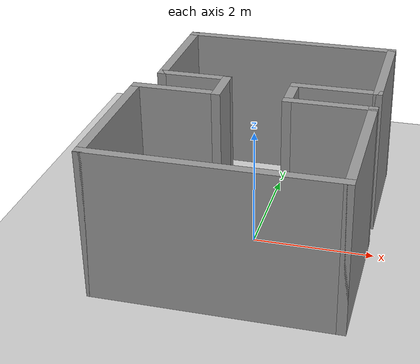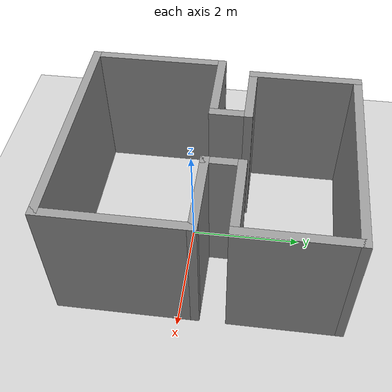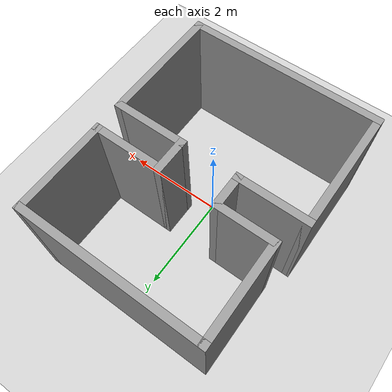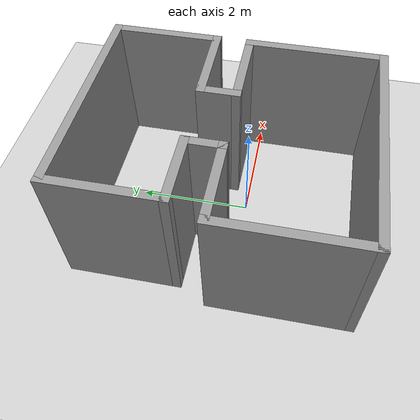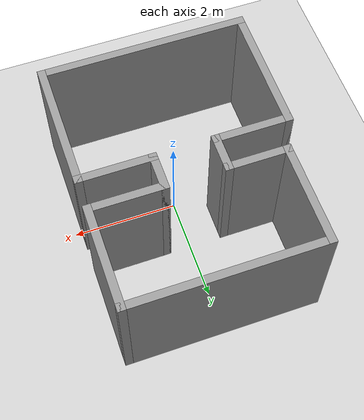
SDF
<?xml version="1.0"?>
<sdf version='1.6'>
  <world name='default'>
    <include>
      <uri>model://ground_plane</uri>
    </include>

    <include>
      <uri>model://sun</uri>
    </include>

    <scene>
      <ambient>0.4 0.4 0.4 1</ambient>
      <background>0.7 0.7 0.7 1</background>
      <shadows>true</shadows>
    </scene>

    <gui fullscreen='0'>
      <camera name='user_camera'>
        <pose>0.8 0.0 12.0 0 1.5708 0</pose>
        <view_controller>orbit</view_controller>
        <projection_type>perspective</projection_type>
      </camera>
    </gui>

    <physics type="ode">
      <real_time_update_rate>1000.0</real_time_update_rate>
      <max_step_size>0.002</max_step_size>
      <real_time_factor>1</real_time_factor>
      <ode>
        <solver>
          <type>quick</type>
          <iters>150</iters>
          <precon_iters>0</precon_iters>
          <sor>1.400000</sor>
          <use_dynamic_moi_rescaling>1</use_dynamic_moi_rescaling>
        </solver>
        <constraints>
          <cfm>0.00001</cfm>
          <erp>0.2</erp>
          <contact_max_correcting_vel>2000.000000</contact_max_correcting_vel>
          <contact_surface_layer>0.01000</contact_surface_layer>
        </constraints>
      </ode>
    </physics>

    <!-- Load model -->
    <include>
      <uri>model://two_room</uri>
    </include>

  </world>
</sdf>

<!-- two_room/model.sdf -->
<sdf version='1.6'>
  <model name='two_room'>
    <pose frame=''>-0.11318 0.341529 0 0 -0 0</pose>
    <link name='Wall_10'>
      <collision name='Wall_10_Collision'>
        <geometry>
          <box>
            <size>1.5 0.15 2.5</size>
          </box>
        </geometry>
        <pose frame=''>0 0 1.25 0 -0 0</pose>
      </collision>
      <visual name='Wall_10_Visual'>
        <pose frame=''>0 0 1.25 0 -0 0</pose>
        <geometry>
          <box>
            <size>1.5 0.15 2.5</size>
          </box>
        </geometry>
        <material>
          <script>
            <uri>file://media/materials/scripts/gazebo.material</uri>
            <name>Gazebo/Grey</name>
          </script>
          <ambient>1 1 1 1</ambient>
        </material>
        <meta>
          <layer>0</layer>
        </meta>
      </visual>
      <pose frame=''>-1.25 -0.05 0 0 -0 0</pose>
    </link>
    <link name='Wall_11'>
      <collision name='Wall_11_Collision'>
        <geometry>
          <box>
            <size>0.75 0.15 2.5</size>
          </box>
        </geometry>
        <pose frame=''>0 0 1.25 0 -0 0</pose>
      </collision>
      <visual name='Wall_11_Visual'>
        <pose frame=''>0 0 1.25 0 -0 0</pose>
        <geometry>
          <box>
            <size>0.75 0.15 2.5</size>
          </box>
        </geometry>
        <material>
          <script>
            <uri>file://media/materials/scripts/gazebo.material</uri>
            <name>Gazebo/Grey</name>
          </script>
          <ambient>1 1 1 1</ambient>
        </material>
        <meta>
          <layer>0</layer>
        </meta>
      </visual>
      <pose frame=''>-0.575 0.25 0 0 -0 1.5708</pose>
    </link>
    <link name='Wall_13'>
      <collision name='Wall_13_Collision'>
        <geometry>
          <box>
            <size>0.75 0.15 2.5</size>
          </box>
        </geometry>
        <pose frame=''>0 0 1.25 0 -0 0</pose>
      </collision>
      <visual name='Wall_13_Visual'>
        <pose frame=''>0 0 1.25 0 -0 0</pose>
        <geometry>
          <box>
            <size>0.75 0.15 2.5</size>
          </box>
        </geometry>
        <material>
          <script>
            <uri>file://media/materials/scripts/gazebo.material</uri>
            <name>Gazebo/Grey</name>
          </script>
          <ambient>1 1 1 1</ambient>
        </material>
        <meta>
          <layer>0</layer>
        </meta>
      </visual>
      <pose frame=''>0.575 0.25 0 0 -0 1.5708</pose>
    </link>
    <link name='Wall_14'>
      <collision name='Wall_14_Collision'>
        <geometry>
          <box>
            <size>1.5 0.15 2.5</size>
          </box>
        </geometry>
        <pose frame=''>0 0 1.25 0 -0 0</pose>
      </collision>
      <visual name='Wall_14_Visual'>
        <pose frame=''>0 0 1.25 0 -0 0</pose>
        <geometry>
          <box>
            <size>1.5 0.15 2.5</size>
          </box>
        </geometry>
        <material>
          <script>
            <uri>file://media/materials/scripts/gazebo.material</uri>
            <name>Gazebo/Grey</name>
          </script>
          <ambient>1 1 1 1</ambient>
        </material>
        <meta>
          <layer>0</layer>
        </meta>
      </visual>
      <pose frame=''>1.25 0.55 0 0 -0 0</pose>
    </link>
    <link name='Wall_17'>
      <collision name='Wall_17_Collision'>
        <geometry>
          <box>
            <size>1.25 0.15 2.5</size>
          </box>
        </geometry>
        <pose frame=''>0 0 1.25 0 -0 0</pose>
      </collision>
      <visual name='Wall_17_Visual'>
        <pose frame=''>0 0 1.25 0 -0 0</pose>
        <geometry>
          <box>
            <size>1.25 0.15 2.5</size>
          </box>
        </geometry>
        <material>
          <script>
            <uri>file://media/materials/scripts/gazebo.material</uri>
            <name>Gazebo/Grey</name>
          </script>
          <ambient>1 1 1 1</ambient>
        </material>
        <meta>
          <layer>0</layer>
        </meta>
      </visual>
      <pose frame=''>-1.125 0.55 0 0 -0 3.14159</pose>
    </link>
    <link name='Wall_18'>
      <collision name='Wall_18_Collision'>
        <geometry>
          <box>
            <size>2 0.15 2.5</size>
          </box>
        </geometry>
        <pose frame=''>0 0 1.25 0 -0 0</pose>
      </collision>
      <visual name='Wall_18_Visual'>
        <pose frame=''>0 0 1.25 0 -0 0</pose>
        <geometry>
          <box>
            <size>2 0.15 2.5</size>
          </box>
        </geometry>
        <material>
          <script>
            <uri>file://media/materials/scripts/gazebo.material</uri>
            <name>Gazebo/Grey</name>
          </script>
          <ambient>1 1 1 1</ambient>
        </material>
        <meta>
          <layer>0</layer>
        </meta>
      </visual>
      <pose frame=''>-1.675 1.475 0 0 -0 1.5708</pose>
    </link>
    <link name='Wall_20'>
      <collision name='Wall_20_Collision'>
        <geometry>
          <box>
            <size>2 0.15 2.5</size>
          </box>
        </geometry>
        <pose frame=''>0 0 1.25 0 -0 0</pose>
      </collision>
      <visual name='Wall_20_Visual'>
        <pose frame=''>0 0 1.25 0 -0 0</pose>
        <geometry>
          <box>
            <size>2 0.15 2.5</size>
          </box>
        </geometry>
        <material>
          <script>
            <uri>file://media/materials/scripts/gazebo.material</uri>
            <name>Gazebo/Grey</name>
          </script>
          <ambient>1 1 1 1</ambient>
        </material>
        <meta>
          <layer>0</layer>
        </meta>
      </visual>
      <pose frame=''>1.925 1.475 0 0 -0 1.5708</pose>
    </link>
    <link name='Wall_21'>
      <collision name='Wall_21_Collision'>
        <geometry>
          <box>
            <size>3.75 0.15 2.5</size>
          </box>
        </geometry>
        <pose frame=''>0 0 1.25 0 -0 0</pose>
      </collision>
      <visual name='Wall_21_Visual'>
        <pose frame=''>0 0 1.25 0 -0 0</pose>
        <geometry>
          <box>
            <size>3.75 0.15 2.5</size>
          </box>
        </geometry>
        <material>
          <script>
            <uri>file://media/materials/scripts/gazebo.material</uri>
            <name>Gazebo/Grey</name>
          </script>
          <ambient>1 1 1 1</ambient>
        </material>
        <meta>
          <layer>0</layer>
        </meta>
      </visual>
      <pose frame=''>0.125 2.4 0 0 -0 3.14159</pose>
    </link>
    <link name='Wall_3'>
      <collision name='Wall_3_Collision'>
        <geometry>
          <box>
            <size>4 0.15 2.5</size>
          </box>
        </geometry>
        <pose frame=''>0 0 1.25 0 -0 0</pose>
      </collision>
      <visual name='Wall_3_Visual'>
        <pose frame=''>0 0 1.25 0 -0 0</pose>
        <geometry>
          <box>
            <size>4 0.15 2.5</size>
          </box>
        </geometry>
        <material>
          <script>
            <uri>file://media/materials/scripts/gazebo.material</uri>
            <name>Gazebo/Grey</name>
          </script>
          <ambient>1 1 1 1</ambient>
        </material>
        <meta>
          <layer>0</layer>
        </meta>
      </visual>
      <pose frame=''>-0 -2.4 0 0 -0 0</pose>
    </link>
    <link name='Wall_5'>
      <collision name='Wall_5_Collision'>
        <geometry>
          <box>
            <size>2.5 0.15 2.5</size>
          </box>
        </geometry>
        <pose frame=''>0 0 1.25 0 -0 0</pose>
      </collision>
      <visual name='Wall_5_Visual'>
        <pose frame=''>0 0 1.25 0 -0 0</pose>
        <geometry>
          <box>
            <size>2.5 0.15 2.5</size>
          </box>
        </geometry>
        <material>
          <script>
            <uri>file://media/materials/scripts/gazebo.material</uri>
            <name>Gazebo/Grey</name>
          </script>
          <ambient>1 1 1 1</ambient>
        </material>
        <meta>
          <layer>0</layer>
        </meta>
      </visual>
      <pose frame=''>-1.925 -1.225 0 0 -0 1.5708</pose>
    </link>
    <link name='Wall_7'>
      <collision name='Wall_7_Collision'>
        <geometry>
          <box>
            <size>2.5 0.15 2.5</size>
          </box>
        </geometry>
        <pose frame=''>0 0 1.25 0 -0 0</pose>
      </collision>
      <visual name='Wall_7_Visual'>
        <pose frame=''>0 0 1.25 0 -0 0</pose>
        <geometry>
          <box>
            <size>2.5 0.15 2.5</size>
          </box>
        </geometry>
        <material>
          <script>
            <uri>file://media/materials/scripts/gazebo.material</uri>
            <name>Gazebo/Grey</name>
          </script>
          <ambient>1 1 1 1</ambient>
        </material>
        <meta>
          <layer>0</layer>
        </meta>
      </visual>
      <pose frame=''>1.925 -1.225 0 0 -0 1.5708</pose>
    </link>
    <link name='Wall_8'>
      <collision name='Wall_8_Collision'>
        <geometry>
          <box>
            <size>1.5 0.15 2.5</size>
          </box>
        </geometry>
        <pose frame=''>0 0 1.25 0 -0 0</pose>
      </collision>
      <visual name='Wall_8_Visual'>
        <pose frame=''>0 0 1.25 0 -0 0</pose>
        <geometry>
          <box>
            <size>1.5 0.15 2.5</size>
          </box>
        </geometry>
        <material>
          <script>
            <uri>file://media/materials/scripts/gazebo.material</uri>
            <name>Gazebo/Grey</name>
          </script>
          <ambient>1 1 1 1</ambient>
        </material>
        <meta>
          <layer>0</layer>
        </meta>
      </visual>
      <pose frame=''>1.25 -0.05 0 0 -0 3.14159</pose>
    </link>
    <static>1</static>
  </model>
</sdf>
